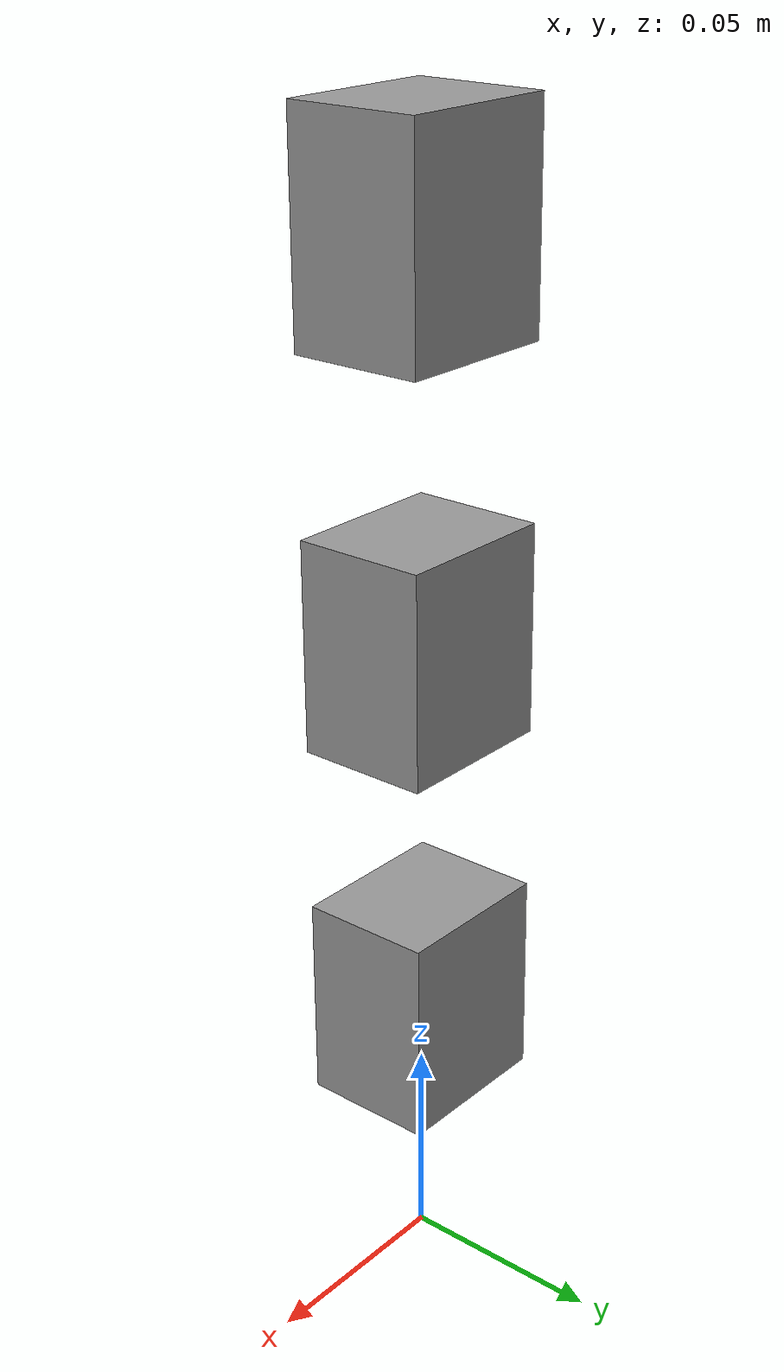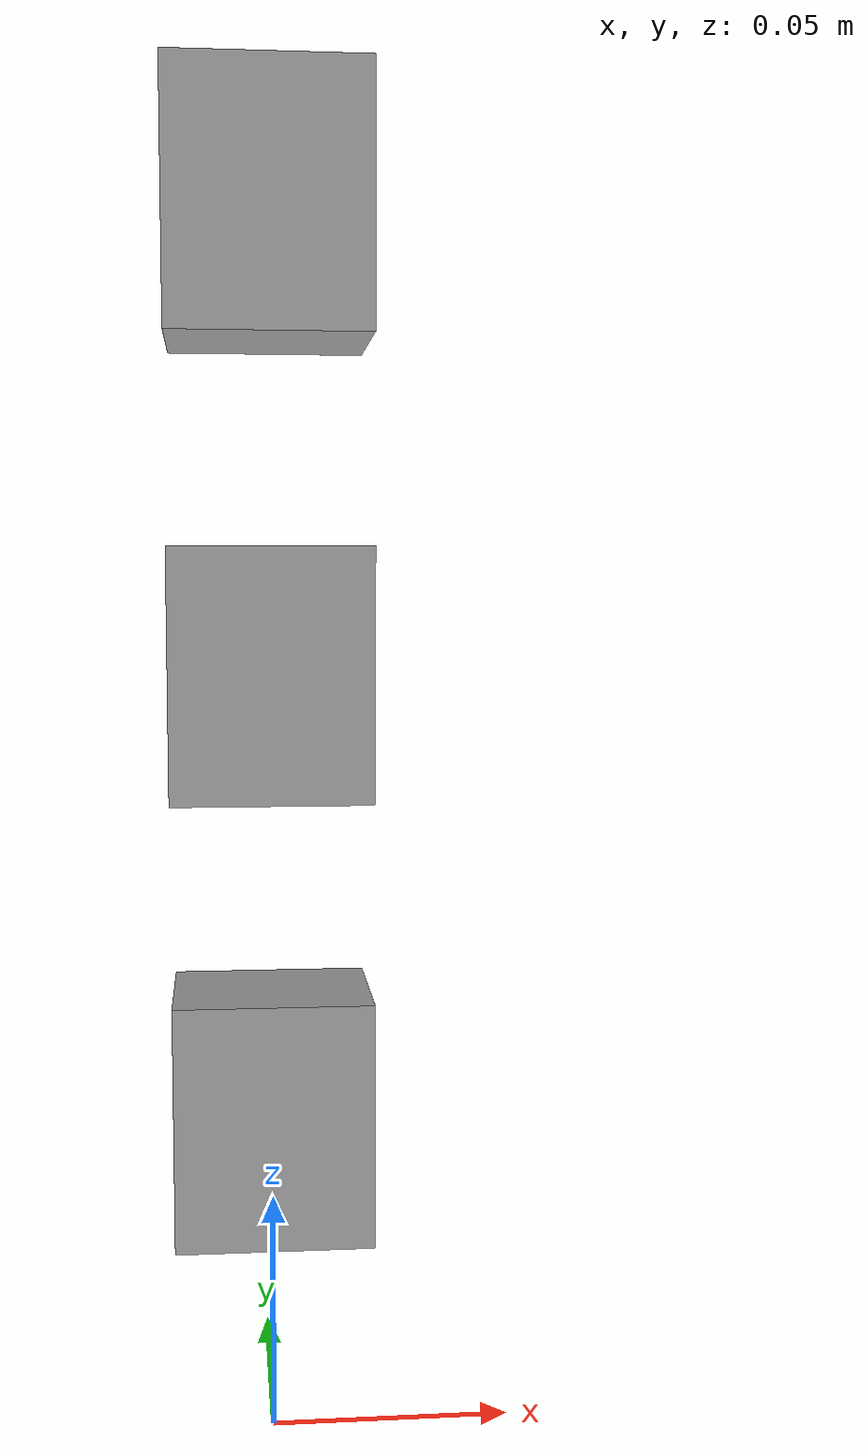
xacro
<?xml version="1.0"?>
<robot name="dynamixel_test_arm" xmlns:xacro="http://www.ros.org/wiki/xacro">

    <xacro:include filename="$(find proxima_description)/robots/dynamixel_AX-12A.xacro" />
    <xacro:include filename="$(find proxima_description)/robots/dynamixel_MX-106T.xacro" />
    <xacro:include filename="$(find proxima_description)/robots/dynamixel_XM430-W350.xacro" />

    <xacro:include filename="$(find proxima_description)/robots/dynamixel_test_ros2_control.xacro" />

    <link name="base_link" />

    <xacro:dynamixel_AX-12A name="joint3" parent="base_link" xyz="0 0 0.05" rpy="0 0 0" />

    <xacro:dynamixel_MX-106T name="joint4" parent="joint3_output" xyz="0 0 0.05" rpy="0 0 0" />

    <xacro:dynamixel_MX-106T name="joint5" parent="joint4_output" xyz="0 0 0.05" rpy="0 0 0" />

    <!--USTALIC PORT NAME-->
    <xacro:dynamixel_system_control
        name="DynamixelTestSystem"
        port_name="/dev/ttyUSB0"
        baud_rate="1000000"
        error_timeout_ms="100" />

</robot>

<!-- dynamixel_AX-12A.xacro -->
<robot xmlns:xacro="http://www.ros.org/wiki/xacro">

    <xacro:macro name="dynamixel_AX-12A" params="name parent xyz rpy:='0 0 0'">

        <xacro:property name="dxl_mass" value="0.0546"/>
        <xacro:property name="dxl_width" value="0.032"/>
        <xacro:property name="dxl_height" value="0.05"/>
        <xacro:property name="dxl_length" value="0.04"/>

        <joint name="${name}_mount" type="fixed">
            <parent link="${parent}"/>
            <child link="${name}_housing"/>
            <origin xyz="${xyz}" rpy="${rpy}"/>
        </joint>

        <link name="${name}_housing">
            <visual>
                <material name="grey"/>
                <origin xyz="0 0 ${dxl_length/2}" rpy="0 0 0"/>
                <geometry>
                    <box size="${dxl_length} ${dxl_width} ${dxl_height}"/>
                </geometry>
            </visual>
            <collision>
                <origin xyz="0 0 ${dxl_length/2}" rpy="0 0 0"/>
                <geometry>
                    <box size="${dxl_length} ${dxl_width} ${dxl_height}"/>
                </geometry>
            </collision>
            <inertial>
                <mass value="${dxl_mass}"/>
                <origin xyz="0 0 ${dxl_length/2}" rpy="0 0 0"/>
                <inertia ixx="${dxl_mass*(dxl_width*dxl_width + dxl_height*dxl_height)/12}"
                         iyy="${dxl_mass*(dxl_length*dxl_length + dxl_height*dxl_height)/12}"
                         izz="${dxl_mass*(dxl_length*dxl_length + dxl_width*dxl_width)/12}"
                         ixy="0" ixz="0" iyz="0"/>
            </inertial>
        </link>

        <joint name="${name}" type="revolute">
            <parent link="${name}_housing"/>
            <child link="${name}_output"/>
            <origin xyz="0 0 ${dxl_length}" rpy="0 0 0"/>
            <!-- Limity -->
            <limit lower="-2.617" upper="2.617" effort="1.5" velocity="6.17"/>
            <axis xyz="0 0 1"/>
        </joint>

        <link name="${name}_output">
            <visual>
                <material name="black"/>
                <origin xyz="0 0 0" rpy="0 0 0"/>
                <geometry>
                    <cylinder radius="0.01" length="0.005"/>
                </geometry>
            </visual>
            <collision>
                <origin xyz="0 0 0" rpy="0 0 0"/>
                <geometry>
                    <cylinder radius="0.01" length="0.005"/>
                </geometry>
            </collision>
            <inertial>
                <!-- wartosci testowe -->
                <mass value="0.005"/>
                <origin xyz="0 0 0" rpy="0 0 0"/>
                <inertia ixx="0.0001" ixy="0.0" ixz="0.0" iyy="0.0001" iyz="0.0" izz="0.0001"/>
            </inertial>
        </link>

    </xacro:macro>
</robot>

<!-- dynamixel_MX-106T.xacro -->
<robot xmlns:xacro="http://www.ros.org/wiki/xacro">
<!--ZMIEN PARAMETRY-->
    <xacro:macro name="dynamixel_MX-106T" params="name parent xyz rpy:='0 0 0'">

        <xacro:property name="dxl_mass" value="0.0546"/>
        <xacro:property name="dxl_width" value="0.032"/>
        <xacro:property name="dxl_height" value="0.05"/>
        <xacro:property name="dxl_length" value="0.04"/>

        <joint name="${name}_mount" type="fixed">
            <parent link="${parent}"/>
            <child link="${name}_housing"/>
            <origin xyz="${xyz}" rpy="${rpy}"/>
        </joint>

        <link name="${name}_housing">
            <visual>
                <material name="grey"/>
                <origin xyz="0 0 ${dxl_length/2}" rpy="0 0 0"/>
                <geometry>
                    <box size="${dxl_length} ${dxl_width} ${dxl_height}"/>
                </geometry>
            </visual>
            <collision>
                <origin xyz="0 0 ${dxl_length/2}" rpy="0 0 0"/>
                <geometry>
                    <box size="${dxl_length} ${dxl_width} ${dxl_height}"/>
                </geometry>
            </collision>
            <inertial>
                <mass value="${dxl_mass}"/>
                <origin xyz="0 0 ${dxl_length/2}" rpy="0 0 0"/>
                <inertia ixx="${dxl_mass*(dxl_width*dxl_width + dxl_height*dxl_height)/12}"
                         iyy="${dxl_mass*(dxl_length*dxl_length + dxl_height*dxl_height)/12}"
                         izz="${dxl_mass*(dxl_length*dxl_length + dxl_width*dxl_width)/12}"
                         ixy="0" ixz="0" iyz="0"/>
            </inertial>
        </link>

        <joint name="${name}" type="revolute">
            <parent link="${name}_housing"/>
            <child link="${name}_output"/>
            <origin xyz="0 0 ${dxl_length}" rpy="0 0 0"/>
            <!-- limity do ogarniecia -->
            <limit lower="-2.617" upper="2.617" effort="1.5" velocity="6.17"/>
            <axis xyz="0 0 1"/>
        </joint>

        <link name="${name}_output">
            <visual>
                <material name="black"/>
                <origin xyz="0 0 0" rpy="0 0 0"/>
                <geometry>
                    <cylinder radius="0.01" length="0.005"/>
                </geometry>
            </visual>
            <collision>
                <origin xyz="0 0 0" rpy="0 0 0"/>
                <geometry>
                    <cylinder radius="0.01" length="0.005"/>
                </geometry>
            </collision>
            <inertial>
                <!-- wartosci testowe-->
                <mass value="0.005"/>
                <origin xyz="0 0 0" rpy="0 0 0"/>
                <inertia ixx="0.0001" ixy="0.0" ixz="0.0" iyy="0.0001" iyz="0.0" izz="0.0001"/>
            </inertial>
        </link>

    </xacro:macro>
</robot>
